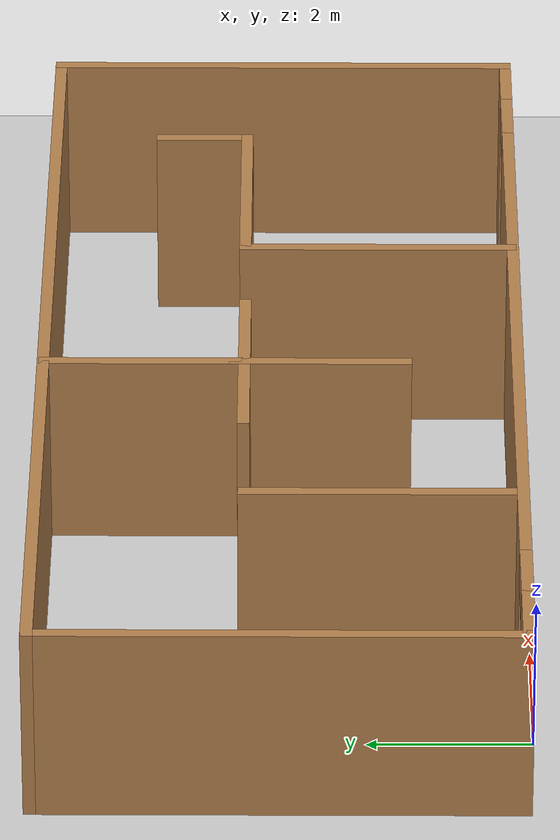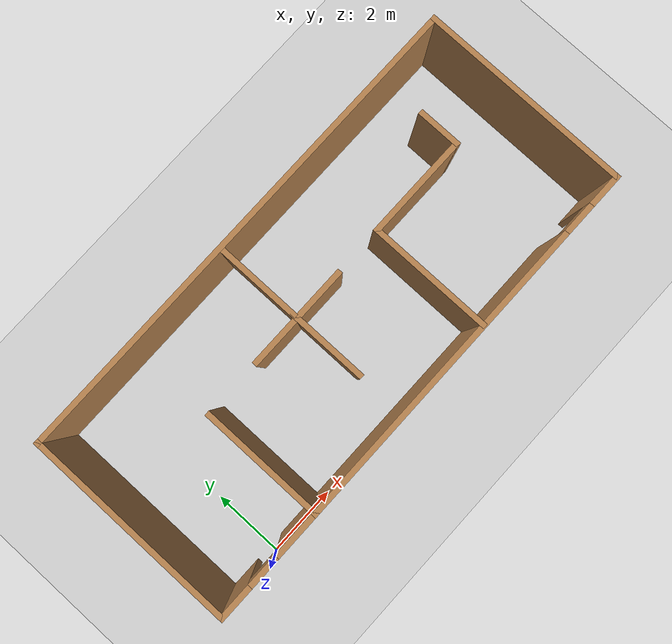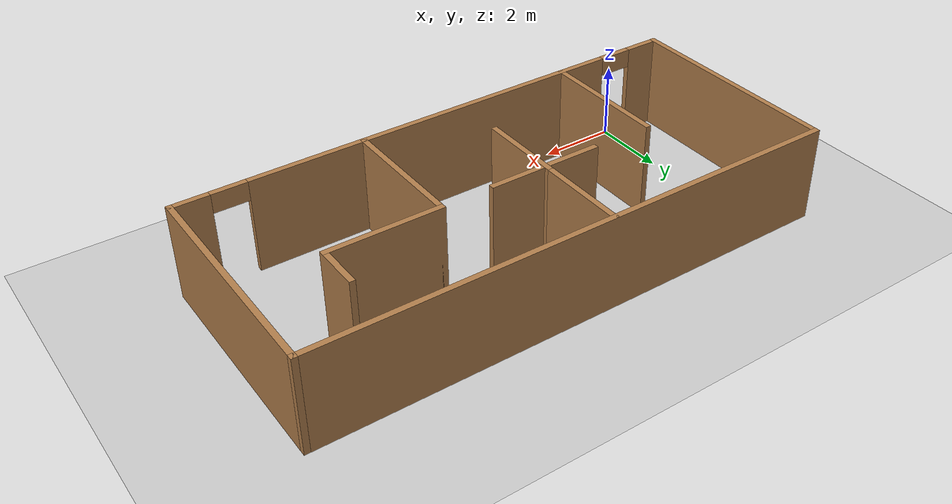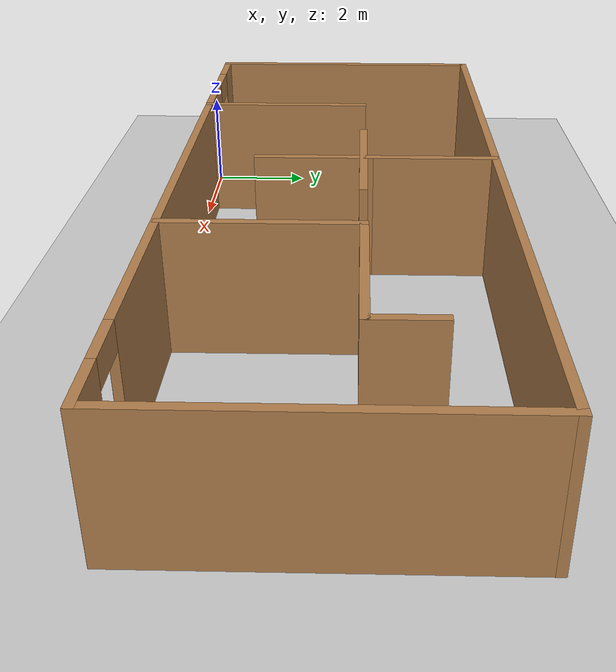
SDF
<sdf version="1.6">
 <world name="default">
  <light name="sun" type="directional">
   <pose>0 0 10 0 -0 0</pose>
   <diffuse>0.8 0.8 0.8 1</diffuse>
   <specular>0.2 0.2 0.2 1</specular>
   <attenuation>
    <range>1000</range>
    <constant>0.9</constant>
    <linear>0.01</linear>
    <quadratic>0.001</quadratic>
   </attenuation>
   <direction>-0.5 0.1 -0.9</direction>
  </light>
  <model name="ground_plane">
   <static>1</static>
   <link name="link">
    <collision name="collision">
     <geometry><plane><normal>0 0 1</normal><size>100 100</size></plane></geometry>
     <surface>
      <contact><collide_bitmask>65535</collide_bitmask></contact>
      <friction><ode><mu>100</mu><mu2>50</mu2></ode></friction>
     </surface>
    </collision>
    <visual name="visual">
     <cast_shadows>0</cast_shadows>
     <geometry><plane><normal>0 0 1</normal><size>100 100</size></plane></geometry>
     <material>
      <script><uri>file://media/materials/scripts/gazebo.material</uri><name>Gazebo/Grey</name></script>
     </material>
    </visual>
   </link>
  </model>
  <gravity>0 0 -9.8</gravity>
  <magnetic_field>6e-06 2.3e-05 -4.2e-05</magnetic_field>
  <atmosphere type="adiabatic"/>
  <physics name="default_physics" default="0" type="ode">
   <max_step_size>0.001</max_step_size>
   <real_time_factor>1</real_time_factor>
   <real_time_update_rate>1000</real_time_update_rate>
  </physics>
  <scene><ambient>0.4 0.4 0.4 1</ambient><background>0.7 0.7 0.7 1</background><shadows>1</shadows></scene>
  <audio><device>default</device></audio>
  <spherical_coordinates>
   <surface_model>EARTH_WGS84</surface_model>
   <latitude_deg>0</latitude_deg>
   <longitude_deg>0</longitude_deg>
   <elevation>0</elevation>
   <heading_deg>0</heading_deg>
  </spherical_coordinates>
  <model name="basic">
   <pose>5.49517 3.04807 -0 0 -0 0</pose>
   <link name="Wall_0">
    <collision name="Wall_0_Collision">
     <geometry><box><size>6 0.15 2.5</size></box></geometry>
     <pose>0 0 1.25 0 -0 0</pose>
    </collision>
    <visual name="Wall_0_Visual">
     <pose>0 0 1.25 0 -0 0</pose>
     <geometry><box><size>6 0.15 2.5</size></box></geometry>
     <material>
      <script><uri>file://media/materials/scripts/gazebo.material</uri><name>Gazebo/Wood</name></script>
      <ambient>1 1 1 1</ambient>
     </material>
     <meta><layer>0</layer></meta>
    </visual>
    <pose>-6.925 0 0 0 -0 -1.5708</pose>
   </link>
   <link name="Wall_1">
    <pose>0 -2.925 0 0 -0 0</pose>
    <visual name="Wall_1_Visual_0">
     <pose>-6.4925 0 1.25 0 -0 0</pose>
     <geometry><box><size>1.015 0.15 2.5</size></box></geometry>
     <material>
      <script><uri>file://media/materials/scripts/gazebo.material</uri><name>Gazebo/Wood</name></script>
      <ambient>1 1 1 1</ambient>
     </material>
     <meta><layer>0</layer></meta>
    </visual>
    <collision name="Wall_1_Collision_0">
     <geometry><box><size>1.015 0.15 2.5</size></box></geometry>
     <pose>-6.4925 0 1.25 0 -0 0</pose>
    </collision>
    <visual name="Wall_1_Visual_1">
     <pose>0.01 0 1.25 0 -0 0</pose>
     <geometry><box><size>10.19 0.15 2.5</size></box></geometry>
     <material>
      <script><uri>file://media/materials/scripts/gazebo.material</uri><name>Gazebo/Wood</name></script>
      <ambient>1 1 1 1</ambient>
     </material>
     <meta><layer>0</layer></meta>
    </visual>
    <collision name="Wall_1_Collision_1">
     <geometry><box><size>10.19 0.15 2.5</size></box></geometry>
     <pose>0.01 0 1.25 0 -0 0</pose>
    </collision>
    <visual name="Wall_1_Visual_2">
     <pose>6.5025 0 1.25 0 -0 0</pose>
     <geometry><box><size>0.995 0.15 2.5</size></box></geometry>
     <material>
      <script><uri>file://media/materials/scripts/gazebo.material</uri><name>Gazebo/Wood</name></script>
      <ambient>1 1 1 1</ambient>
     </material>
     <meta><layer>0</layer></meta>
    </visual>
    <collision name="Wall_1_Collision_2">
     <geometry><box><size>0.995 0.15 2.5</size></box></geometry>
     <pose>6.5025 0 1.25 0 -0 0</pose>
    </collision>
    <visual name="Wall_1_Visual_3">
     <pose>-5.535 0 2.25 0 -0 0</pose>
     <geometry><box><size>0.9 0.15 0.5</size></box></geometry>
     <material>
      <script><uri>file://media/materials/scripts/gazebo.material</uri><name>Gazebo/Wood</name></script>
      <ambient>1 1 1 1</ambient>
     </material>
     <meta><layer>0</layer></meta>
    </visual>
    <collision name="Wall_1_Collision_3">
     <geometry><box><size>0.9 0.15 0.5</size></box></geometry>
     <pose>-5.535 0 2.25 0 -0 0</pose>
    </collision>
    <visual name="Wall_1_Visual_4">
     <pose>5.555 0 2.25 0 -0 0</pose>
     <geometry><box><size>0.9 0.15 0.5</size></box></geometry>
     <material>
      <script><uri>file://media/materials/scripts/gazebo.material</uri><name>Gazebo/Wood</name></script>
      <ambient>1 1 1 1</ambient>
     </material>
     <meta><layer>0</layer></meta>
    </visual>
    <collision name="Wall_1_Collision_4">
     <geometry><box><size>0.9 0.15 0.5</size></box></geometry>
     <pose>5.555 0 2.25 0 -0 0</pose>
    </collision>
   </link>
   <link name="Wall_10">
    <collision name="Wall_10_Collision">
     <geometry><box><size>3.5 0.15 2.5</size></box></geometry>
     <pose>0 0 1.25 0 -0 0</pose>
    </collision>
    <visual name="Wall_10_Visual">
     <pose>0 0 1.25 0 -0 0</pose>
     <geometry><box><size>3.5 0.15 2.5</size></box></geometry>
     <material>
      <script><uri>file://media/materials/scripts/gazebo.material</uri><name>Gazebo/Wood</name></script>
      <ambient>1 1 1 1</ambient>
     </material>
     <meta><layer>0</layer></meta>
    </visual>
    <pose>2.105 -1.22 0 0 -0 1.5708</pose>
   </link>
   <link name="Wall_12">
    <collision name="Wall_12_Collision">
     <geometry><box><size>3 0.15 2.5</size></box></geometry>
     <pose>0 0 1.25 0 -0 0</pose>
    </collision>
    <visual name="Wall_12_Visual">
     <pose>0 0 1.25 0 -0 0</pose>
     <geometry><box><size>3 0.15 2.5</size></box></geometry>
     <material>
      <script><uri>file://media/materials/scripts/gazebo.material</uri><name>Gazebo/Wood</name></script>
      <ambient>1 1 1 1</ambient>
     </material>
     <meta><layer>0</layer></meta>
    </visual>
    <pose>3.53 0.455 0 0 -0 0</pose>
   </link>
   <link name="Wall_13">
    <collision name="Wall_13_Collision">
     <geometry><box><size>1.25 0.15 2.5</size></box></geometry>
     <pose>0 0 1.25 0 -0 0</pose>
    </collision>
    <visual name="Wall_13_Visual">
     <pose>0 0 1.25 0 -0 0</pose>
     <geometry><box><size>1.25 0.15 2.5</size></box></geometry>
     <material>
      <script><uri>file://media/materials/scripts/gazebo.material</uri><name>Gazebo/Wood</name></script>
      <ambient>1 1 1 1</ambient>
     </material>
     <meta><layer>0</layer></meta>
    </visual>
    <pose>4.955 1.005 0 0 -0 1.5708</pose>
   </link>
   <link name="Wall_16">
    <collision name="Wall_16_Collision">
     <geometry><box><size>3 0.15 2.5</size></box></geometry>
     <pose>0 0 1.25 0 -0 0</pose>
    </collision>
    <visual name="Wall_16_Visual">
     <pose>0 0 1.25 0 -0 0</pose>
     <geometry><box><size>3 0.15 2.5</size></box></geometry>
     <material>
      <script><uri>file://media/materials/scripts/gazebo.material</uri><name>Gazebo/Wood</name></script>
      <ambient>1 1 1 1</ambient>
     </material>
     <meta><layer>0</layer></meta>
    </visual>
    <pose>-0.71 0.445 0 0 -0 0</pose>
   </link>
   <link name="Wall_18">
    <collision name="Wall_18_Collision">
     <geometry><box><size>2.25 0.15 2.5</size></box></geometry>
     <pose>0 0 1.25 0 -0 0</pose>
    </collision>
    <visual name="Wall_18_Visual">
     <pose>0 0 1.25 0 -0 0</pose>
     <geometry><box><size>2.25 0.15 2.5</size></box></geometry>
     <material>
      <script><uri>file://media/materials/scripts/gazebo.material</uri><name>Gazebo/Wood</name></script>
      <ambient>1 1 1 1</ambient>
     </material>
     <meta><layer>0</layer></meta>
    </visual>
    <pose>-0.725 -0.495 0 0 -0 -1.5708</pose>
   </link>
   <link name="Wall_2">
    <collision name="Wall_2_Collision">
     <geometry><box><size>6 0.15 2.5</size></box></geometry>
     <pose>0 0 1.25 0 -0 0</pose>
    </collision>
    <visual name="Wall_2_Visual">
     <pose>0 0 1.25 0 -0 0</pose>
     <geometry><box><size>6 0.15 2.5</size></box></geometry>
     <material>
      <script><uri>file://media/materials/scripts/gazebo.material</uri><name>Gazebo/Wood</name></script>
      <ambient>1 1 1 1</ambient>
     </material>
     <meta><layer>0</layer></meta>
    </visual>
    <pose>6.925 0 0 0 -0 1.5708</pose>
   </link>
   <link name="Wall_3">
    <collision name="Wall_3_Collision">
     <geometry><box><size>14 0.15 2.5</size></box></geometry>
     <pose>0 0 1.25 0 -0 0</pose>
    </collision>
    <visual name="Wall_3_Visual">
     <pose>0 0 1.25 0 -0 0</pose>
     <geometry><box><size>14 0.15 2.5</size></box></geometry>
     <material>
      <script><uri>file://media/materials/scripts/gazebo.material</uri><name>Gazebo/Wood</name></script>
      <ambient>1 1 1 1</ambient>
     </material>
     <meta><layer>0</layer></meta>
    </visual>
    <pose>0 2.925 0 0 -0 3.14159</pose>
   </link>
   <link name="Wall_6">
    <collision name="Wall_6_Collision">
     <geometry><box><size>3.5 0.15 2.5</size></box></geometry>
     <pose>0 0 1.25 0 -0 0</pose>
    </collision>
    <visual name="Wall_6_Visual">
     <pose>0 0 1.25 0 -0 0</pose>
     <geometry><box><size>3.5 0.15 2.5</size></box></geometry>
     <material>
      <script><uri>file://media/materials/scripts/gazebo.material</uri><name>Gazebo/Wood</name></script>
      <ambient>1 1 1 1</ambient>
     </material>
     <meta><layer>0</layer></meta>
    </visual>
    <pose>-3.775 -1.25 0 0 -0 1.5708</pose>
   </link>
   <link name="Wall_8">
    <collision name="Wall_8_Collision">
     <geometry><box><size>2.5 0.15 2.5</size></box></geometry>
     <pose>0 0 1.25 0 -0 0</pose>
    </collision>
    <visual name="Wall_8_Visual">
     <pose>0 0 1.25 0 -0 0</pose>
     <geometry><box><size>2.5 0.15 2.5</size></box></geometry>
     <material>
      <script><uri>file://media/materials/scripts/gazebo.material</uri><name>Gazebo/Wood</name></script>
      <ambient>1 1 1 1</ambient>
     </material>
     <meta><layer>0</layer></meta>
    </visual>
    <pose>-0.725 1.73 0 0 -0 -1.5708</pose>
   </link>
   <static>1</static>
  </model>
 </world>
</sdf>
